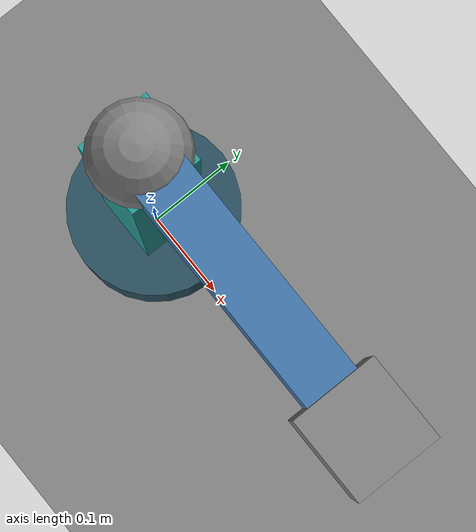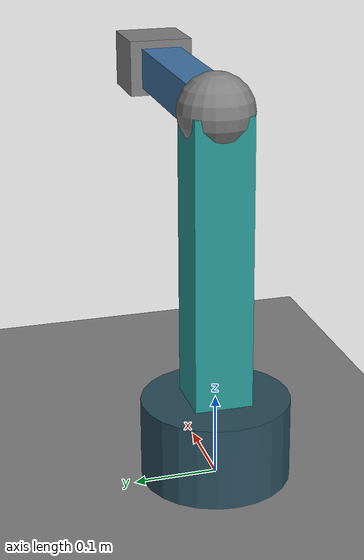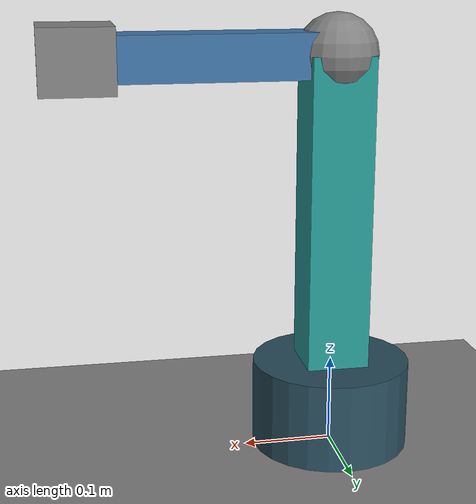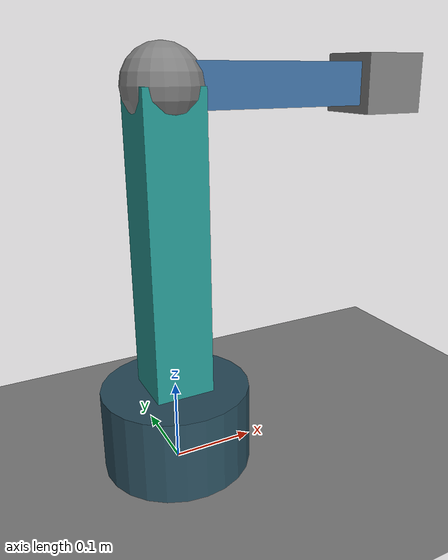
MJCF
<mujoco model="sentinel_two_link_inspection">
  <option timestep="0.002" gravity="0 0 -9.81"/>
  <worldbody>
    <geom name="floor" type="plane" size="1 1 .05"/>
    <body name="base" pos="0 0 .05">
      <geom name="base_shell" type="cylinder" size=".09 .05" rgba=".16 .3 .36 1"/>
      <body name="shoulder" pos="0 0 .05">
        <joint name="yaw" type="hinge" axis="0 0 1" range="-90 90" damping="2"/>
        <geom name="upper_link" type="box" size=".035 .035 .175" pos="0 0 .175" rgba=".15 .6 .58 1"/>
        <body name="elbow" pos="0 0 .35">
          <joint name="pitch" type="hinge" axis="0 1 0" range="-60 60" damping="2"/>
          <geom name="joint_shell" type="sphere" size=".045"/>
          <geom name="forearm" type="box" size=".14 .025 .025" pos=".14 0 0" rgba=".25 .45 .65 1"/>
          <body name="tool" pos=".28 0 0">
            <geom name="tool_shell" type="box" size=".04 .04 .035"/>
          </body>
        </body>
      </body>
    </body>
  </worldbody>
</mujoco>
